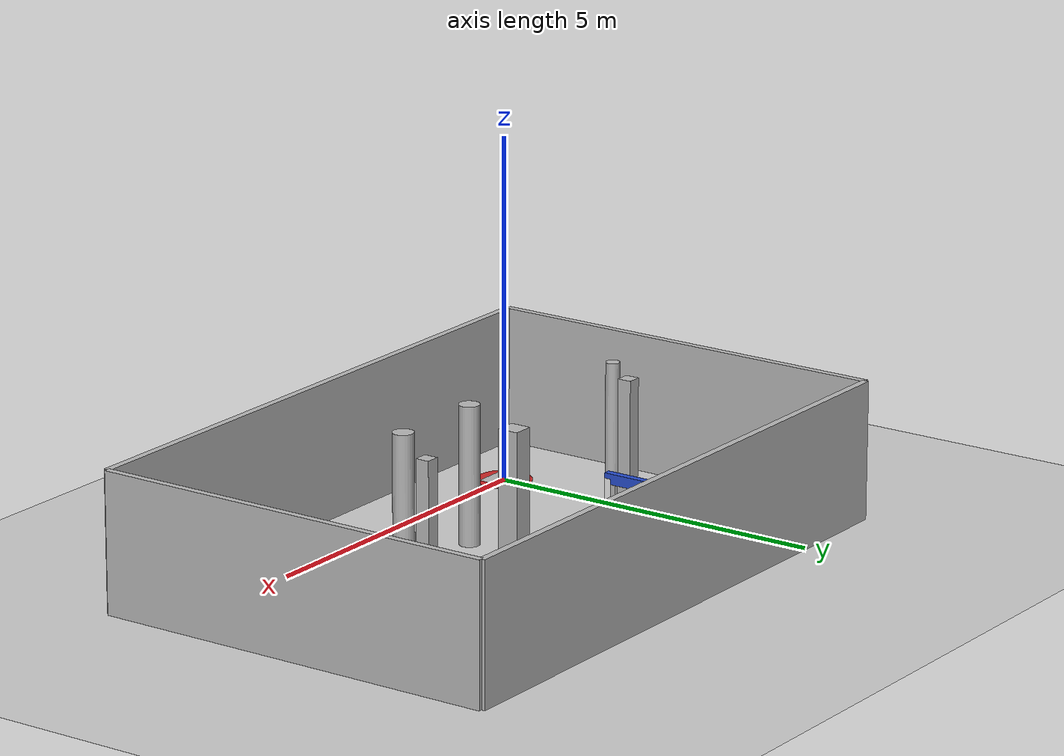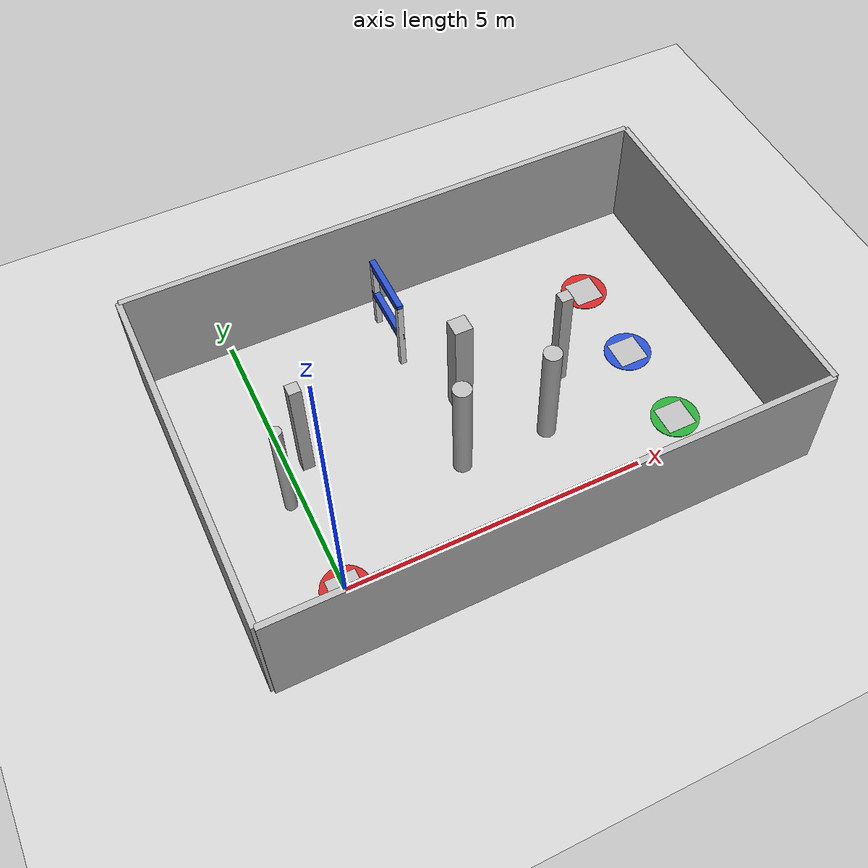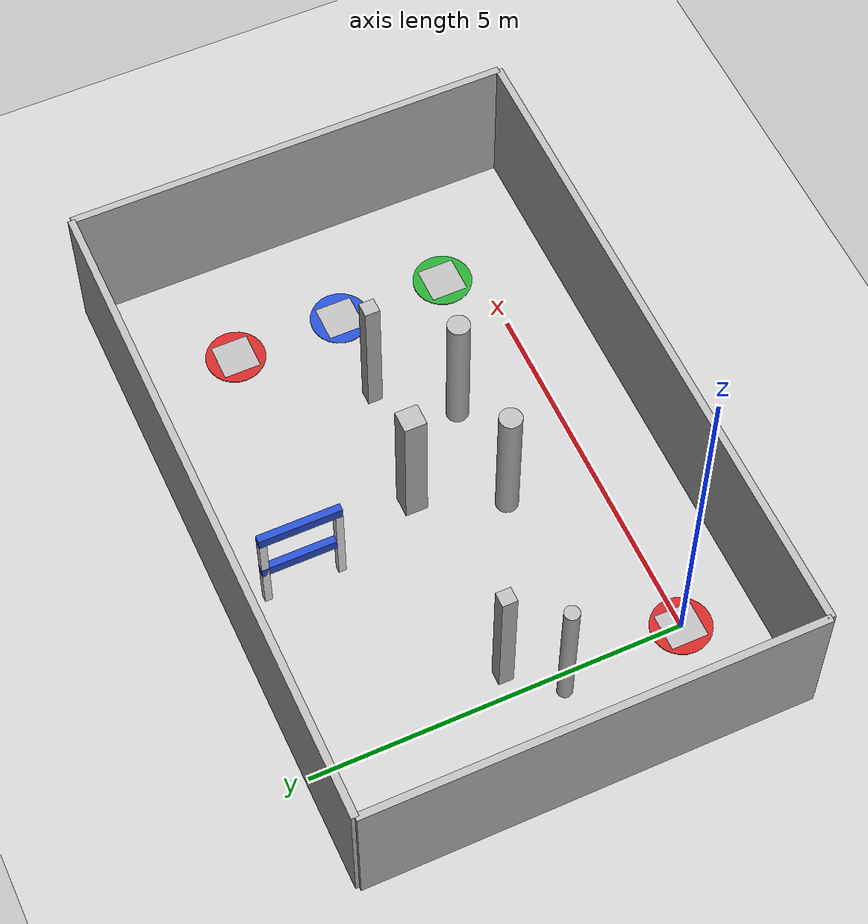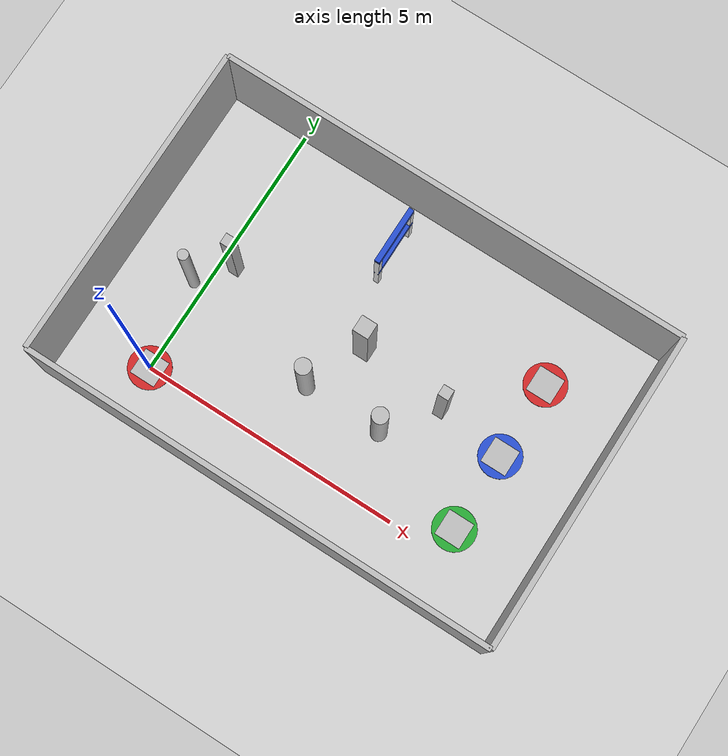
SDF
<?xml version="1.0" ?>
<sdf version="1.6">
  <world name="task_world">
    <include><uri>model://sun</uri></include>
    <include><uri>model://ground_plane</uri></include>

    <model name="boundary_walls">
      <static>1</static>
      <link name="walls">
        <collision name="south"><pose>3 -1 1 0 0 0</pose><geometry><box><size>9 0.1 2</size></box></geometry></collision>
        <visual name="south_v"><pose>3 -1 1 0 0 0</pose><geometry><box><size>9 0.1 2</size></box></geometry></visual>
        <collision name="north"><pose>3 5 1 0 0 0</pose><geometry><box><size>9 0.1 2</size></box></geometry></collision>
        <visual name="north_v"><pose>3 5 1 0 0 0</pose><geometry><box><size>9 0.1 2</size></box></geometry></visual>
        <collision name="west"><pose>-1.5 2 1 0 0 0</pose><geometry><box><size>0.1 6 2</size></box></geometry></collision>
        <visual name="west_v"><pose>-1.5 2 1 0 0 0</pose><geometry><box><size>0.1 6 2</size></box></geometry></visual>
        <collision name="east"><pose>7.5 2 1 0 0 0</pose><geometry><box><size>0.1 6 2</size></box></geometry></collision>
        <visual name="east_v"><pose>7.5 2 1 0 0 0</pose><geometry><box><size>0.1 6 2</size></box></geometry></visual>
      </link>
    </model>

    <model name="h_takeoff">
      <static>1</static>
      <pose>0 0 0.005 0 0 0</pose> <link name="link">
        <visual name="base">
          <geometry><cylinder><radius>0.4</radius><length>0.01</length></cylinder></geometry>
          <material><script><name>Gazebo/Red</name></script></material>
        </visual>
        <visual name="h_logo">
          <pose>0 0 0.006 0 0 0</pose>
          <geometry><plane><normal>0 0 1</normal><size>0.5 0.5</size></plane></geometry>
          <material><script><uri>model://h_marker/materials/scripts</uri><uri>model://h_marker/materials/textures</uri><name>HMarker/Diffuse</name></script></material>
        </visual>
      </link>
    </model>

    <model name="h_land_red">
      <static>1</static>
      <pose>6 3.5 0.005 0 0 0</pose>
      <link name="link">
        <visual name="base">
          <geometry><cylinder><radius>0.4</radius><length>0.01</length></cylinder></geometry>
          <material><script><name>Gazebo/Red</name></script></material>
        </visual>
        <visual name="h_logo">
          <pose>0 0 0.006 0 0 0</pose>
          <geometry><plane><normal>0 0 1</normal><size>0.5 0.5</size></plane></geometry>
          <material><script><uri>model://h_marker/materials/scripts</uri><uri>model://h_marker/materials/textures</uri><name>HMarker/Diffuse</name></script></material>
        </visual>
      </link>
    </model>

    <model name="h_land_blue">
      <static>1</static>
      <pose>6 2 0.005 0 0 0</pose>
      <link name="link">
        <visual name="base">
          <geometry><cylinder><radius>0.4</radius><length>0.01</length></cylinder></geometry>
          <material><script><name>Gazebo/Blue</name></script></material>
        </visual>
        <visual name="h_logo">
          <pose>0 0 0.006 0 0 0</pose>
          <geometry><plane><normal>0 0 1</normal><size>0.5 0.5</size></plane></geometry>
          <material><script><uri>model://h_marker/materials/scripts</uri><uri>model://h_marker/materials/textures</uri><name>HMarker/Diffuse</name></script></material>
        </visual>
      </link>
    </model>

    <model name="h_land_green">
      <static>1</static>
      <pose>6 0.5 0.005 0 0 0</pose>
      <link name="link">
        <visual name="base">
          <geometry><cylinder><radius>0.4</radius><length>0.01</length></cylinder></geometry>
          <material><script><name>Gazebo/Green</name></script></material>
        </visual>
        <visual name="h_logo">
          <pose>0 0 0.006 0 0 0</pose>
          <geometry><plane><normal>0 0 1</normal><size>0.5 0.5</size></plane></geometry>
          <material><script><uri>model://h_marker/materials/scripts</uri><uri>model://h_marker/materials/textures</uri><name>HMarker/Diffuse</name></script></material>
        </visual>
      </link>
    </model>

    <model name="racing_gate">
      <static>1</static>
      <pose>2.5 4 0 0 0 0</pose>
      <link name="gate_link">
        <visual name="left_v"><pose>0 -0.5 0.7 0 0 0</pose><geometry><box><size>0.1 0.1 1.4</size></box></geometry><material><script><name>Gazebo/White</name></script></material></visual>
        <collision name="left_c"><pose>0 -0.5 0.7 0 0 0</pose><geometry><box><size>0.1 0.1 1.4</size></box></geometry></collision>
        <visual name="right_v"><pose>0 0.5 0.7 0 0 0</pose><geometry><box><size>0.1 0.1 1.4</size></box></geometry><material><script><name>Gazebo/White</name></script></material></visual>
        <collision name="right_c"><pose>0 0.5 0.7 0 0 0</pose><geometry><box><size>0.1 0.1 1.4</size></box></geometry></collision>
        <visual name="bottom_v"><pose>0 0 0.7 0 0 0</pose><geometry><box><size>0.1 1.1 0.15</size></box></geometry><material><script><name>Gazebo/Blue</name></script></material></visual>
        <collision name="bottom_c"><pose>0 0 0.7 0 0 0</pose><geometry><box><size>0.1 1.1 0.15</size></box></geometry></collision>
        <visual name="top_v"><pose>0 0 1.4 0 0 0</pose><geometry><box><size>0.1 1.1 0.15</size></box></geometry><material><script><name>Gazebo/Blue</name></script></material></visual>
        <collision name="top_c"><pose>0 0 1.4 0 0 0</pose><geometry><box><size>0.1 1.1 0.15</size></box></geometry></collision>
      </link>
    </model>

    <model name="obs_left_1"><static>1</static><pose>-0.2 1.7 1 0 0 0</pose><link name="l"><collision name="c"><geometry><cylinder><radius>0.1</radius><length>2</length></cylinder></geometry></collision><visual name="v"><geometry><cylinder><radius>0.1</radius><length>2</length></cylinder></geometry></visual></link></model>
    <model name="obs_left_2"><static>1</static><pose>0.3 2.3 1 0 0 0</pose><link name="l"><collision name="c"><geometry><box><size>0.2 0.2 2</size></box></geometry></collision><visual name="v"><geometry><box><size>0.2 0.2 2</size></box></geometry></visual></link></model>
    <model name="obs_mid_1"><static>1</static><pose>2.5 1.2 1 0 0 0</pose><link name="l"><collision name="c"><geometry><cylinder><radius>0.15</radius><length>2</length></cylinder></geometry></collision><visual name="v"><geometry><cylinder><radius>0.15</radius><length>2</length></cylinder></geometry></visual></link></model>
    <model name="obs_mid_2"><static>1</static><pose>4 1.2 1 0 0 0</pose><link name="l"><collision name="c"><geometry><cylinder><radius>0.15</radius><length>2</length></cylinder></geometry></collision><visual name="v"><geometry><cylinder><radius>0.15</radius><length>2</length></cylinder></geometry></visual></link></model>
    <model name="obs_mid_3"><static>1</static><pose>3 2.3 1 0 0 0</pose><link name="l"><collision name="c"><geometry><box><size>0.3 0.3 2</size></box></geometry></collision><visual name="v"><geometry><box><size>0.3 0.3 2</size></box></geometry></visual></link></model>
    <model name="obs_mid_4"><static>1</static><pose>4.7 2.1 1 0 0 0</pose><link name="l"><collision name="c"><geometry><box><size>0.2 0.2 2</size></box></geometry></collision><visual name="v"><geometry><box><size>0.2 0.2 2</size></box></geometry></visual></link></model>

  </world>
</sdf>
